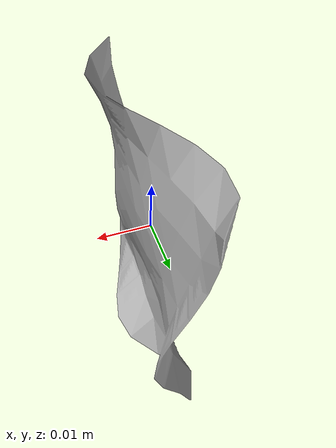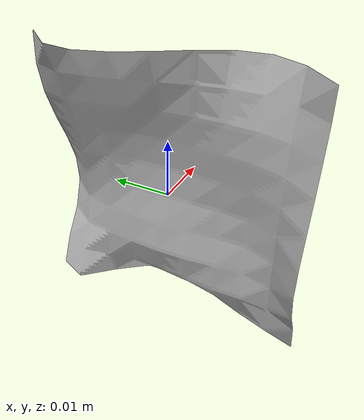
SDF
<?xml version='1.0'?>
<sdf version='1.6'>
  <model name="ID7_130">
  <static>true</static>
    <link name="link">
      <collision name="collision">
        <geometry>
          <mesh>
            <uri>model://test/meshes/ID7_130.dae</uri>
          </mesh>
        </geometry>
      </collision>

      <visual name='visual'>
        <geometry>
          <mesh>
            <uri>model://ID7_130/meshes/ID7_130.dae</uri>
          </mesh>
        </geometry>
      </visual>
    </link>

    </model>
  </sdf>
